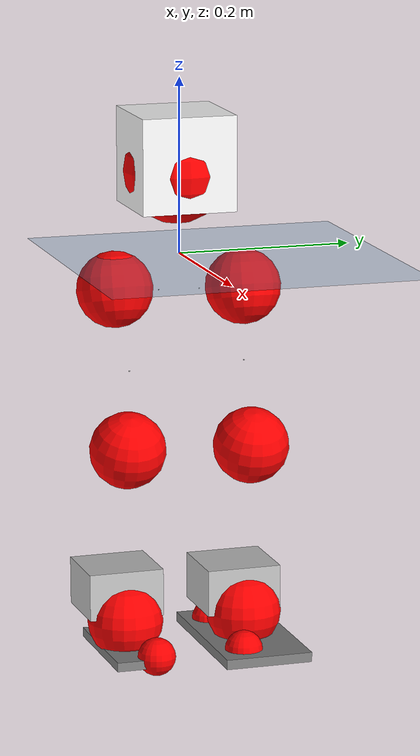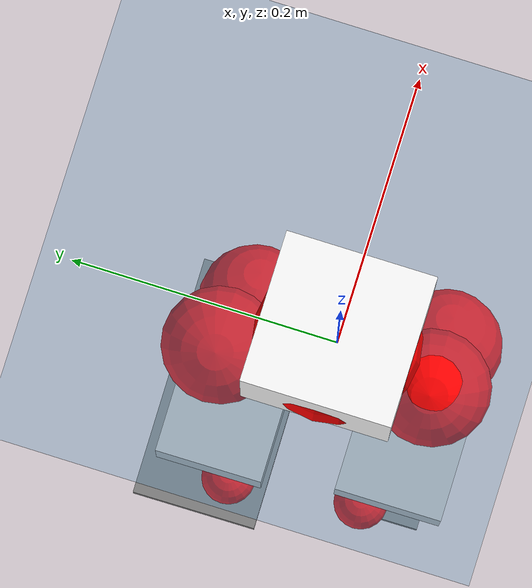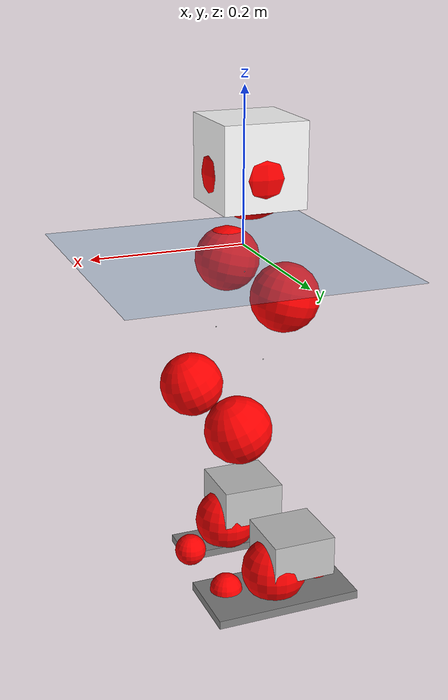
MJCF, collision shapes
<mujoco model="pi_12dof_release_v1">
  <compiler angle="radian" assetdir="assets" balanceinertia="true" inertiafromgeom="false"/>

  <option timestep="0.005" density="1.2" viscosity="2e-05"/>

  <size nkey="1"/>

  <visual>
    <quality shadowsize="8192"/>
    <map shadowclip="0.5"/>
  </visual>

  <default>
    <default class="/">
      <joint armature="0.01" damping="0.01" frictionloss="0.01"/>
      <geom contype="0" conaffinity="0" group="1" solref="-1000 -80"/>
      <site size="0.01 0.005 0.005" group="5"/>
      <general forcelimited="true" biastype="affine" gainprm="20" biasprm="0 -20 -0.5"/>
      <default class="foot">
        <geom size="0.0845 0.036 0.005" type="box" condim="6" group="4" priority="1" friction="0.9 0.2 0.2" solimp="0.015 1 0.005"/>
      </default>
      <default class="reward_collision_sphere">
        <geom group="5" rgba="1 0 0 1"/>
      </default>
    </default>
  </default>

  <asset>
    <texture type="skybox" colorspace="auto" name="//unnamed_texture_0" builtin="gradient" rgb1="0.95 0.95 0.95" rgb2="0.95 0.95 0.95" width="100" height="600"/>
    <texture type="2d" colorspace="auto" name="texplane" builtin="checker" rgb1="0.345 0.575 0.748" rgb2="0.345 0.575 0.748" markrgb="1 1 1" width="512" height="512"/>
    <material name="MatPlane" class="/" texture="texplane" texuniform="true" texrepeat="2 2" specular="0.9"/>
    <mesh name="baselink_1" class="/" file="baselink_1.STL"/>
    <mesh name="r_hip_pitch_link" class="/" file="r_hip_pitch_link.STL"/>
    <mesh name="r_hip_roll_link" class="/" file="r_hip_roll_link.STL"/>
    <mesh name="r_thigh_link" class="/" file="r_thigh_link.STL"/>
    <mesh name="r_calf_link" class="/" file="r_calf_link.STL"/>
    <mesh name="r_ankle_pitch_link" class="/" file="r_ankle_pitch_link.STL"/>
    <mesh name="r_ankle_roll_link" class="/" file="r_ankle_roll_link.STL"/>
    <mesh name="l_hip_pitch_link" class="/" file="l_hip_pitch_link.STL"/>
    <mesh name="l_hip_roll_link" class="/" file="l_hip_roll_link.STL"/>
    <mesh name="l_thigh_link" class="/" file="l_thigh_link.STL"/>
    <mesh name="l_calf_link" class="/" file="l_calf_link.STL"/>
    <mesh name="l_ankle_pitch_link" class="/" file="l_ankle_pitch_link.STL"/>
    <mesh name="l_ankle_roll_link" class="/" file="l_ankle_roll_link.STL"/>
  </asset>

  <worldbody>
    <geom name="floor" class="/" size="100 100 0.125" type="plane" group="0" material="MatPlane"/>
    <light name="toplight_shadow" class="/" pos="0 0 5" dir="0.0990148 0.0990148 -0.990148" type="directional" ambient="0.04 0.04 0.04" diffuse="0.55 0.55 0.55" specular="0.12 0.12 0.12"/>
    <light name="toplight_fill" class="/" pos="0 0 5" dir="0.0990148 0.0990148 -0.990148" type="directional" castshadow="false" ambient="0.04 0.04 0.04" diffuse="0.3 0.3 0.3" specular="0.08 0.08 0.08"/>
    <body name="trunk" pos="-0.00778882 -0.00135857 -0.00190185" quat="1 5.21022e-05 -8.65011e-05 0.000177597">
      <inertial pos="0.00310057 -0.00306129 0.0543493" quat="0.701415 0.0213864 0.00495398 0.712415" mass="2.84012" diaginertia="0.00610619 0.00652443 0.0188025"/>
      <joint name="//unnamed_joint_0" type="free"/>
      <geom name="//unnamed_geom_1" class="/" type="mesh" density="0" rgba="1 1 1 1" mesh="baselink_1"/>
      <geom name="//unnamed_geom_2" class="/" size="0.0544561 0.0544561 0.0544561" pos="0 0 0.108587" type="box" rgba="1 1 1 1"/>
      <geom name="//unnamed_geom_3" class="reward_collision_sphere" size="0.0599017" pos="0 0 0.0950137"/>
      <site name="imu" class="/" pos="0.000175639 -0.00759261 0.0463685" size="0.0108912"/>
      <camera name="track" class="/" pos="0 -1.92876 0" quat="0.707107 0.707107 0 0" mode="trackcom"/>
      <camera name="ego_camera" class="/" pos="0.0709235 0 0.244321" quat="-0.5 -0.5 0.5 0.5"/>
      <body name="r_hip_pitch_link" pos="-0.00268188 -0.0203137 -0.0410704" quat="0.992304 0.00331378 -0.123777 0.000171126">
        <inertial pos="0.00958232 -0.0519879 0.000155212" quat="-0.0186831 0.703904 -0.0296792 0.709429" mass="0.463102" diaginertia="7.94314e-05 8.52137e-05 0.000366405"/>
        <joint name="r_hip_pitch_joint" class="/" pos="0 0 0" axis="-0.0207923 -0.999463 -0.0253332" range="-1.92195 1.1584" armature="0.0110679" damping="0" frictionloss="0.0106035"/>
        <geom name="//unnamed_geom_4" class="/" type="mesh" density="0" rgba="0.75294 0.75294 0.75294 1" mesh="r_hip_pitch_link"/>
        <geom name="//unnamed_geom_5" class="/" size="0.000544561 0.000544561 0.000544561" type="box" rgba="0.75294 0.75294 0.75294 1"/>
        <body name="r_hip_roll_link" pos="0.00453572 -0.0526365 0.00345454" quat="1 -3.38199e-05 -0.000222093 0.000852524">
          <inertial pos="-0.000563619 -0.00020642 -0.0727973" quat="0.710322 -0.0803494 -0.072638 0.695493" mass="0.518767" diaginertia="0.000260604 0.000233799 0.000584803"/>
          <joint name="r_hip_roll_joint" class="/" pos="0 0 0" axis="-0.999426 0.0320243 0.0110718" range="-0.0834801 0.345285" armature="0.0097732" damping="0.01964" frictionloss="0.0137853"/>
          <geom name="//unnamed_geom_6" class="/" type="mesh" density="0" rgba="0.75294 0.75294 0.75294 1" mesh="r_hip_roll_link"/>
          <geom name="//unnamed_geom_7" class="/" size="0.000544561 0.000544561 0.000544561" type="box" rgba="0.75294 0.75294 0.75294 1"/>
          <geom name="//unnamed_geom_8" class="reward_collision_sphere" size="0.0435649"/>
          <body name="r_thigh_link" pos="-0.00303339 0.0103534 -0.0930988" quat="0.999997 0.000965607 -0.00222522 0.00096541">
            <inertial pos="-0.00235624 0.000442824 -0.0642133" quat="0.725229 0.687353 -0.0348712 -0.0193088" mass="0.131894" diaginertia="9.64398e-05 7.5708e-05 0.000276063"/>
            <joint name="r_thigh_joint" class="/" pos="0 0 0" axis="-0.000747424 -0.0173352 -0.999849" stiffness="0.0470501" range="-0.405716 0.411228" armature="0.0112979" damping="0.0115759" frictionloss="0.0121048"/>
            <geom name="//unnamed_geom_9" class="/" type="mesh" density="0" rgba="0.75294 0.75294 0.75294 1" mesh="r_thigh_link"/>
            <geom name="//unnamed_geom_10" class="/" size="0.000544561 0.000544561 0.000544561" type="box" rgba="0.75294 0.75294 0.75294 1"/>
            <body name="r_calf_link" pos="0.00987889 -0.0120524 -0.0886713" quat="0.947452 -0.000926884 0.319895 -0.000173771">
              <inertial pos="-0.00978991 -0.000902896 -0.0863017" quat="0.99989 0.012133 0.00464462 -0.00712193" mass="0.94981" diaginertia="0.00230668 0.0027366 0.000718115"/>
              <joint name="r_calf_joint" class="/" pos="0 0 0" axis="0.0187684 -0.99906 0.0390723" stiffness="0.0126068" range="-1.69047 0.654631" armature="0.0095234" damping="0.0019728" frictionloss="0.0102044"/>
              <geom name="//unnamed_geom_11" class="/" type="mesh" density="0" rgba="0.75294 0.75294 0.75294 1" mesh="r_calf_link"/>
              <geom name="//unnamed_geom_12" class="/" size="0.000544561 0.000544561 0.000544561" type="box" rgba="0.75294 0.75294 0.75294 1"/>
              <geom name="//unnamed_geom_13" class="reward_collision_sphere" size="0.0435649"/>
              <body name="r_ankle_pitch_link" pos="0.001073 0.00604826 -0.193913" quat="0.980046 -3.81816e-05 -0.19877 2.56682e-05">
                <inertial pos="0.00723039 -0.00729206 -3.3899e-05" quat="0.00301158 0.707924 -0.00123502 0.706281" mass="0.224559" diaginertia="0.000229556 0.000186465 0.000549435"/>
                <joint name="r_ankle_pitch_joint" class="/" pos="0 0 0" axis="0.0146323 -0.999749 0.0169647" range="-1.33449 0.497855" armature="0.0143483" damping="0" frictionloss="0.013721"/>
                <geom name="//unnamed_geom_14" class="/" type="mesh" density="0" rgba="0.75294 0.75294 0.75294 1" mesh="r_ankle_pitch_link"/>
                <geom name="//unnamed_geom_15" class="/" size="0.0424758 0.0435649 0.0272281" type="box" rgba="0.75294 0.75294 0.75294 1"/>
                <body name="r_ankle_roll_link" pos="0.0738834 0.00262077 -0.00710116" quat="0.999988 -0.00406508 0.00193744 0.00167949">
                  <inertial pos="-0.0333232 0.00467238 -0.026471" quat="0.558069 0.434451 0.436356 0.556242" mass="0.715405" diaginertia="0.000811879 0.000769218 0.00112789"/>
                  <joint name="r_ankle_roll_joint" class="/" pos="0 0 0" axis="-0.998817 -0.0479174 0.00823972" stiffness="0.0190999" range="-0.140091 0.125398" armature="0.0110026" damping="0" frictionloss="0.0101583"/>
                  <geom name="//unnamed_geom_16" class="/" type="mesh" density="0" rgba="0.75294 0.75294 0.75294 1" mesh="r_ankle_roll_link"/>
                  <geom name="//unnamed_geom_17" class="/" type="mesh" rgba="0.75294 0.75294 0.75294 1" mesh="r_ankle_roll_link"/>
                  <geom name="right_foot" class="foot" size="0.0731236 0.0299945 0.0051886" pos="-0.048228 0 -0.0597229"/>
                  <geom name="//unnamed_geom_19" class="reward_collision_sphere" size="0.0435649" pos="-0.0472823 0 -0.0271468"/>
                  <geom name="//unnamed_geom_20" class="reward_collision_sphere" size="0.0217824" pos="0.0141847 0.0192876 -0.0542935"/>
                  <geom name="//unnamed_geom_21" class="reward_collision_sphere" size="0.0217824" pos="-0.113478 0.0192876 -0.0542935"/>
                  <site name="right_foot" class="foot" pos="-0.048228 0 -0.0597229" size="0.0108912"/>
                </body>
              </body>
            </body>
          </body>
        </body>
      </body>
      <body name="l_hip_pitch_link" pos="-0.0111195 0.0298883 -0.0444348" quat="0.992206 2.29183e-05 -0.12461 -0.000209516">
        <inertial pos="-0.00809287 0.062919 -6.03659e-05" quat="-0.0236472 0.681965 0.0252265 0.730567" mass="0.514985" diaginertia="9.61613e-05 8.66373e-05 0.000501644"/>
        <joint name="l_hip_pitch_joint" class="/" pos="0 0 0" axis="0.0218448 0.998583 0.0485286" stiffness="0.0399003" range="-1.07927 1.78759" armature="0.0157043" damping="0.0173074" frictionloss="0.00952267"/>
        <geom name="//unnamed_geom_22" class="/" type="mesh" density="0" rgba="0.75294 0.75294 0.75294 1" mesh="l_hip_pitch_link"/>
        <geom name="//unnamed_geom_23" class="/" size="0.000544561 0.000544561 0.000544561" type="box" rgba="0.75294 0.75294 0.75294 1"/>
        <body name="l_hip_roll_link" pos="-0.00322867 0.053249 -0.000241849" quat="1 -0.000440619 0.000285616 0.000204623">
          <inertial pos="-0.000763372 -0.00898355 -0.0815111" quat="0.705707 -0.0548135 -0.0574568 0.704039" mass="0.472988" diaginertia="0.000249201 0.000221379 0.000622902"/>
          <joint name="l_hip_roll_joint" class="/" pos="0 0 0" axis="-0.999881 -0.00669309 0.0138696" stiffness="0.0200814" range="-0.536776 0.0643302" armature="0.00690036" damping="0.0234965" frictionloss="0.0128016"/>
          <geom name="//unnamed_geom_24" class="/" type="mesh" density="0" rgba="0.75294 0.75294 0.75294 1" mesh="l_hip_roll_link"/>
          <geom name="//unnamed_geom_25" class="/" size="0.000544561 0.000544561 0.000544561" type="box" rgba="0.75294 0.75294 0.75294 1"/>
          <geom name="//unnamed_geom_26" class="reward_collision_sphere" size="0.0435649"/>
          <body name="l_thigh_link" pos="0.00442164 -0.0066991 -0.0840626" quat="0.999987 0.0019296 0.00371217 0.00284576">
            <inertial pos="0.00239563 -0.00159377 -0.075476" quat="0.6672 0.744793 -0.0110275 -0.00249209" mass="0.162209" diaginertia="9.3502e-05 8.19019e-05 0.000275326"/>
            <joint name="l_thigh_joint" class="/" pos="0 0 0" axis="-0.00249597 -0.00284259 -0.999993" stiffness="0.0042098" range="-0.424074 0.247343" armature="0.0110287" damping="0.0326352" frictionloss="0.0118732"/>
            <geom name="//unnamed_geom_27" class="/" type="mesh" density="0" rgba="0.75294 0.75294 0.75294 1" mesh="l_thigh_link"/>
            <geom name="//unnamed_geom_28" class="/" size="0.000544561 0.000544561 0.000544561" type="box" rgba="0.75294 0.75294 0.75294 1"/>
            <body name="l_calf_link" pos="0.00900777 -0.0017087 -0.0974451" quat="0.947629 0.000384121 0.319374 0.000253463">
              <inertial pos="-0.00511113 0.000675362 -0.0964598" quat="0.998996 0.0278416 -0.0271201 -0.0222601" mass="1.02971" diaginertia="0.00251055 0.0027188 0.000752572"/>
              <joint name="l_calf_joint" class="/" pos="0 0 0" axis="0.037417 0.999287 0.00513895" stiffness="0.00867116" range="-0.749158 1.62426" armature="0.0113422" damping="0.0165617" frictionloss="0.0146248"/>
              <geom name="//unnamed_geom_29" class="/" type="mesh" density="0" rgba="0.75294 0.75294 0.75294 1" mesh="l_calf_link"/>
              <geom name="//unnamed_geom_30" class="/" size="0.000544561 0.000544561 0.000544561" type="box" rgba="0.75294 0.75294 0.75294 1"/>
              <geom name="//unnamed_geom_31" class="reward_collision_sphere" size="0.0435649"/>
              <body name="l_ankle_pitch_link" pos="0.00187232 0.00291431 -0.197896" quat="0.98001 0.000131212 -0.198948 0.000491615">
                <inertial pos="0.00485668 -0.00265125 -0.000362413" quat="-0.0364901 0.699771 0.0392711 0.712353" mass="0.229723" diaginertia="0.000230805 0.00017203 0.000487754"/>
                <joint name="l_ankle_pitch_joint" class="/" pos="0 0 0" axis="0.00422844 0.99999 0.00110969" range="-0.60066 1.2169" armature="0.0109242" damping="0.0344" frictionloss="0.0114173"/>
                <geom name="//unnamed_geom_32" class="/" type="mesh" density="0" rgba="0.75294 0.75294 0.75294 1" mesh="l_ankle_pitch_link"/>
                <geom name="//unnamed_geom_33" class="/" size="0.0424758 0.0435649 0.0272281" type="box" rgba="0.75294 0.75294 0.75294 1"/>
                <body name="l_ankle_roll_link" pos="0.0741199 0.00386025 -0.000366736" quat="1 -0.000671337 0.000209095 0.000491398">
                  <inertial pos="-0.0149754 0.00985726 -0.0284659" quat="0.556138 0.429232 0.430334 0.566819" mass="0.59797" diaginertia="0.000885108 0.000764492 0.00127485"/>
                  <joint name="l_ankle_roll_joint" class="/" pos="0 0 0" axis="-0.999999 0.000719804 -0.000903332" range="-0.145439 0.235867" armature="0.0117637" damping="0" frictionloss="0.00677319"/>
                  <geom name="//unnamed_geom_34" class="/" type="mesh" density="0" rgba="0.75294 0.75294 0.75294 1" mesh="l_ankle_roll_link"/>
                  <geom name="//unnamed_geom_35" class="/" type="mesh" rgba="0.75294 0.75294 0.75294 1" mesh="l_ankle_roll_link"/>
                  <geom name="left_foot" class="foot" size="0.0987488 0.0507876 0.00564777" pos="-0.048228 0 -0.0597229"/>
                  <geom name="//unnamed_geom_37" class="reward_collision_sphere" size="0.0435649" pos="-0.0472823 0 -0.0271468"/>
                  <geom name="//unnamed_geom_38" class="reward_collision_sphere" size="0.0217824" pos="0.0141847 -0.0192876 -0.0542935"/>
                  <geom name="//unnamed_geom_39" class="reward_collision_sphere" size="0.0217824" pos="-0.113478 -0.0192876 -0.0542935"/>
                  <site name="left_foot" class="foot" pos="-0.048228 0 -0.0597229" size="0.0108912"/>
                </body>
              </body>
            </body>
          </body>
        </body>
      </body>
    </body>
  </worldbody>

  <contact>
    <pair class="/" geom1="floor" geom2="right_foot" name="//unnamed_contact_1"/>
    <pair class="/" geom1="floor" geom2="left_foot" name="//unnamed_contact_0"/>
  </contact>

  <actuator>
    <general name="r_hip_pitch_joint" class="/" joint="r_hip_pitch_joint" forcerange="-21.1949 21.1949" gainprm="22.7811" biasprm="0 -22.7811 -0.571833"/>
    <general name="r_hip_roll_joint" class="/" joint="r_hip_roll_joint" forcerange="-15.8559 15.8559" gainprm="22.7811" biasprm="0 -22.7811 -0.571833"/>
    <general name="r_thigh_joint" class="/" joint="r_thigh_joint" forcerange="-24.0631 24.0631" gainprm="22.7811" biasprm="0 -22.7811 -0.571833"/>
    <general name="r_calf_joint" class="/" joint="r_calf_joint" forcerange="-14.7128 14.7128" gainprm="22.7811" biasprm="0 -22.7811 -0.571833"/>
    <general name="r_ankle_pitch_joint" class="/" joint="r_ankle_pitch_joint" forcerange="-22.6893 22.6893" gainprm="22.7811" biasprm="0 -22.7811 -0.571833"/>
    <general name="r_ankle_roll_joint" class="/" joint="r_ankle_roll_joint" forcerange="-22.5408 22.5408" gainprm="22.7811" biasprm="0 -22.7811 -0.571833"/>
    <general name="l_hip_pitch_joint" class="/" joint="l_hip_pitch_joint" forcerange="-22.4715 22.4715" gainprm="22.7811" biasprm="0 -22.7811 -0.571833"/>
    <general name="l_hip_roll_joint" class="/" joint="l_hip_roll_joint" forcerange="-28.8102 28.8102" gainprm="22.7811" biasprm="0 -22.7811 -0.571833"/>
    <general name="l_thigh_joint" class="/" joint="l_thigh_joint" forcerange="-21.3506 21.3506" gainprm="22.7811" biasprm="0 -22.7811 -0.571833"/>
    <general name="l_calf_joint" class="/" joint="l_calf_joint" forcerange="-22.3915 22.3915" gainprm="22.7811" biasprm="0 -22.7811 -0.571833"/>
    <general name="l_ankle_pitch_joint" class="/" joint="l_ankle_pitch_joint" forcerange="-24.2221 24.2221" gainprm="22.7811" biasprm="0 -22.7811 -0.571833"/>
    <general name="l_ankle_roll_joint" class="/" joint="l_ankle_roll_joint" forcerange="-19.6516 19.6516" gainprm="22.7811" biasprm="0 -22.7811 -0.571833"/>
  </actuator>

  <sensor>
    <gyro site="imu" name="imu_angular_velocity"/>
    <velocimeter site="imu" name="imu_linear_velocity"/>
    <framelinvel objtype="site" objname="left_foot" name="left_foot_global_linear_velocity"/>
    <framelinvel objtype="site" objname="right_foot" name="right_foot_global_linear_velocity"/>
  </sensor>

  <keyframe>
    <key name="home" qpos="0 0 0.291 1 0 0 0 0.4 0 0 -0.8 0.4 0 -0.4 0 0 0.8 -0.4 0"/>
  </keyframe>
</mujoco>
